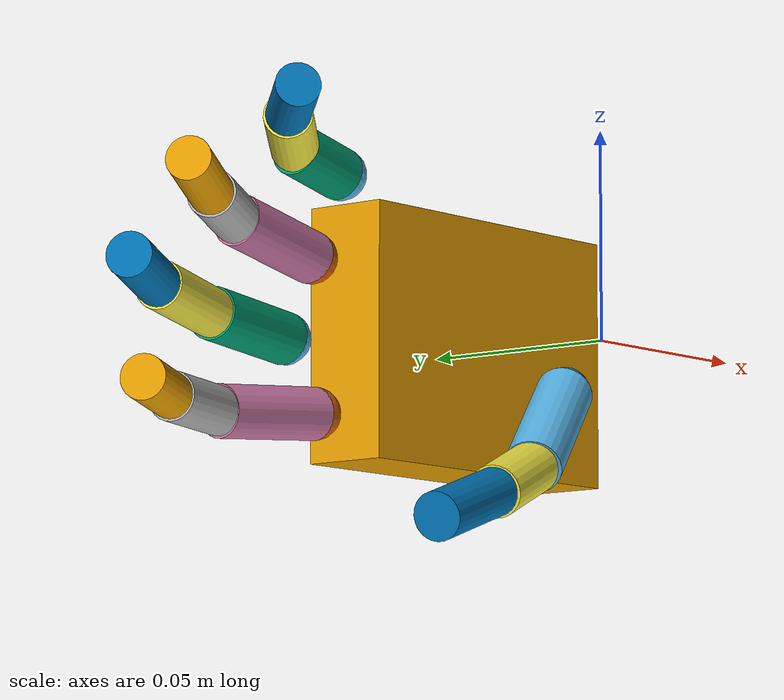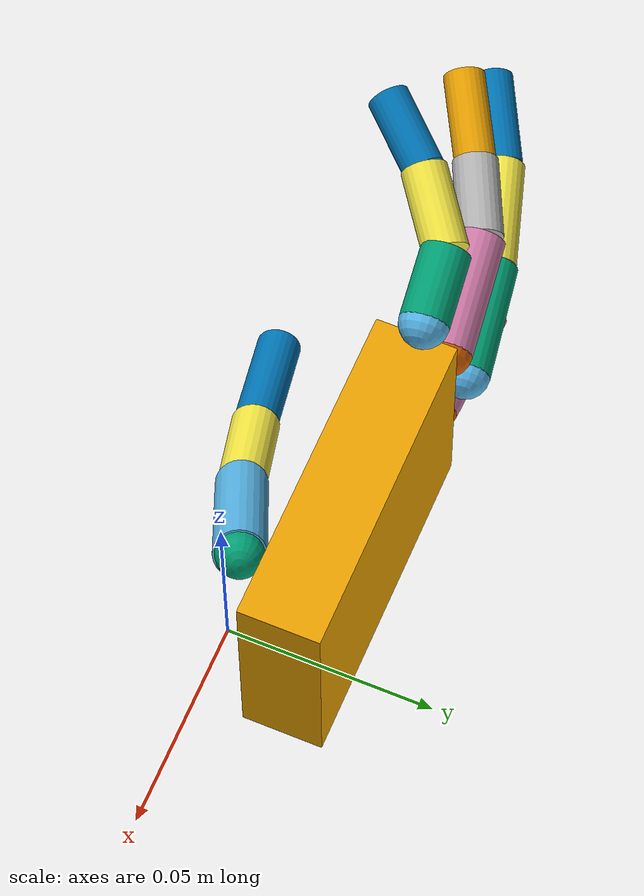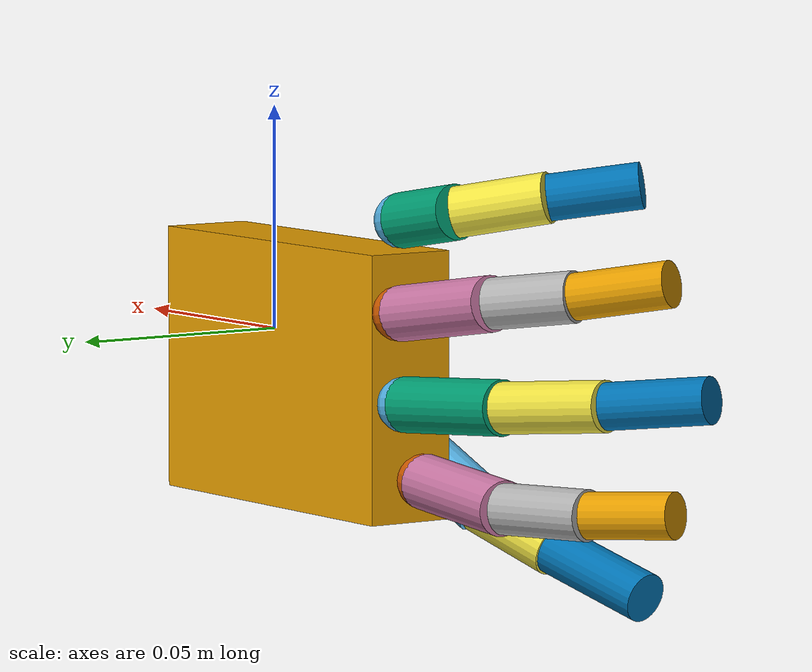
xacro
<?xml version="1.0"?>
<robot xmlns:xacro="http://www.ros.org/wiki/xacro" name="contact_glove_left_hand">
  <xacro:include filename="contact_glove_hand_macro.xacro"/>
  <xacro:contact_glove_hand prefix="left_" reflect="-1"
    thumb_cmc_xyz="-0.025381 -0.008529 -0.015627" thumb_cmc_rpy="0.334048 -0.915860 -3.141593"
    thumb_mcp_xyz="0.000000 0.000000 -0.035171" thumb_mcp_rpy="0.210768 -0.213154 -1.064962"
    thumb_ip_xyz="-0.000000 0.000000 -0.022226" thumb_ip_rpy="0.036811 -0.075436 -0.018412"
    index_tilt_xyz="-0.083161 0.016905 -0.024087" index_tilt_rpy="-0.033286 -1.494541 -3.141593"
    index_pip_xyz="0.000000 0.000000 -0.030304" index_pip_rpy="0.301107 -0.102103 -0.003412"
    index_dip_xyz="0.000000 0.000000 -0.022533" index_dip_rpy="0.180888 -0.048283 0.013251"
    middle_tilt_xyz="-0.085536 0.023667 -0.006883" middle_tilt_rpy="-2.986293 -1.505030 0.000000"
    middle_pip_xyz="0.000000 0.000000 -0.029532" middle_pip_rpy="0.146422 -0.026088 0.004085"
    middle_dip_xyz="0.000000 0.000000 -0.026913" middle_dip_rpy="0.180227 -0.029346 0.009137"
    ring_tilt_xyz="-0.079755 0.020956 0.011829" ring_tilt_rpy="-3.023948 -1.417839 -0.000000"
    ring_pip_xyz="-0.000000 0.000000 -0.029291" ring_pip_rpy="0.328943 0.013233 -0.001564"
    ring_dip_xyz="0.000000 0.000000 -0.019854" ring_dip_rpy="0.055291 -0.045314 0.021716"
    little_tilt_xyz="-0.074475 0.016905 0.031042" little_tilt_rpy="-3.035639 -1.399894 0.000000"
    little_pip_xyz="0.000000 -0.000000 -0.017978" little_pip_rpy="0.522659 -0.049843 0.005305"
    little_dip_xyz="-0.000000 -0.000000 -0.020702" little_dip_rpy="0.189436 0.009989 -0.007264"/>
</robot>

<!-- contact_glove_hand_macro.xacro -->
<!--
  Copyright (c) 2026 Melt Interface Technologies Inc.
  SPDX-License-Identifier: Apache-2.0
-->
<robot xmlns:xacro="http://www.ros.org/wiki/xacro" name="contact_glove_hand_macro">

  <xacro:property name="joint_effort" value="5.0"/>
  <xacro:property name="joint_velocity" value="5.0"/>

  <!-- Uses calibrated lower and upper joint limits (radians).
       Shared by the four fingers: index, middle, ring, and little. -->
  <xacro:property name="tilt_lower" value="-0.85"/>
  <xacro:property name="tilt_upper" value="0.85"/>
  <xacro:property name="mcp_lower" value="-1.1344640137963142"/>
  <xacro:property name="mcp_upper" value="1.66"/>
  <xacro:property name="pip_lower" value="-0.5235987755982988"/>
  <xacro:property name="pip_upper" value="2.00"/>
  <xacro:property name="dip_lower" value="-0.3490658503988659"/>
  <xacro:property name="dip_upper" value="1.75"/>

  <xacro:property name="thumb_cmc_lower" value="-1.1344640137963142"/>
  <xacro:property name="thumb_cmc_upper" value="2.62"/>
  <xacro:property name="thumb_tilt_lower" value="-0.70"/>
  <xacro:property name="thumb_tilt_upper" value="0.70"/>
  <xacro:property name="thumb_mcp_lower" value="-1.1344640137963142"/>
  <xacro:property name="thumb_mcp_upper" value="1.85"/>
  <xacro:property name="thumb_ip_lower" value="-0.6981317007977318"/>
  <xacro:property name="thumb_ip_upper" value="1.85"/>

  <xacro:property name="thumb_cmc_len" value="0.035171"/>
  <xacro:property name="thumb_mcp_len" value="0.022226"/>
  <xacro:property name="thumb_ip_len" value="0.027821"/>
  <xacro:property name="index_mcp_len" value="0.030304"/>
  <xacro:property name="index_pip_len" value="0.022533"/>
  <xacro:property name="index_dip_len" value="0.020385"/>
  <xacro:property name="middle_mcp_len" value="0.029532"/>
  <xacro:property name="middle_pip_len" value="0.026913"/>
  <xacro:property name="middle_dip_len" value="0.023940"/>
  <xacro:property name="ring_mcp_len" value="0.029291"/>
  <xacro:property name="ring_pip_len" value="0.019854"/>
  <xacro:property name="ring_dip_len" value="0.022077"/>
  <xacro:property name="little_mcp_len" value="0.017978"/>
  <xacro:property name="little_pip_len" value="0.020702"/>
  <xacro:property name="little_dip_len" value="0.019761"/>

  <!-- Cylinder radius: a visual estimate, not a measured value. -->
  <xacro:property name="thumb_cmc_radius" value="0.0065"/>
  <xacro:property name="thumb_mcp_radius" value="0.006"/>
  <xacro:property name="thumb_ip_radius" value="0.0055"/>
  <xacro:property name="mcp_radius" value="0.006"/>
  <xacro:property name="pip_radius" value="0.0055"/>
  <xacro:property name="dip_radius" value="0.005"/>

  <!-- Draw a cylinder of length ${length} from the link origin along local Z toward
       the next joint. This matches joint-origin translations of "0 0 -length". -->
  <xacro:macro name="cg_cylinder_link" params="name length radius">
    <link name="${name}">
      <visual>
        <origin xyz="0 0 ${-length/2}" rpy="0 0 0"/>
        <geometry>
          <cylinder radius="${radius}" length="${length}"/>
        </geometry>
      </visual>
    </link>
  </xacro:macro>

  <xacro:macro name="cg_pivot_link" params="name">
    <link name="${name}">
      <visual>
        <geometry>
          <sphere radius="0.006"/>
        </geometry>
      </visual>
    </link>
  </xacro:macro>

  <xacro:macro name="cg_finger" params="prefix finger reflect
      tilt_xyz tilt_rpy
      pip_xyz pip_rpy
      dip_xyz dip_rpy
      mcp_len pip_len dip_len">
    <joint name="${prefix}${finger}_tilt_joint" type="revolute">
      <parent link="${prefix}wrist"/>
      <child link="${prefix}${finger}_tilt_link"/>
      <origin xyz="${tilt_xyz}" rpy="${tilt_rpy}"/>
      <axis xyz="0 ${reflect} 0"/>
      <limit lower="${tilt_lower}" upper="${tilt_upper}"
             effort="${joint_effort}" velocity="${joint_velocity}"/>
    </joint>
    <xacro:cg_pivot_link name="${prefix}${finger}_tilt_link"/>

    <joint name="${prefix}${finger}_mcp_joint" type="revolute">
      <parent link="${prefix}${finger}_tilt_link"/>
      <child link="${prefix}${finger}_mcp_link"/>
      <origin xyz="0 0 0" rpy="0 0 0"/>
      <axis xyz="1 0 0"/>
      <limit lower="${mcp_lower}" upper="${mcp_upper}"
             effort="${joint_effort}" velocity="${joint_velocity}"/>
    </joint>
    <xacro:cg_cylinder_link name="${prefix}${finger}_mcp_link" length="${mcp_len}" radius="${mcp_radius}"/>

    <joint name="${prefix}${finger}_pip_joint" type="revolute">
      <parent link="${prefix}${finger}_mcp_link"/>
      <child link="${prefix}${finger}_pip_link"/>
      <origin xyz="${pip_xyz}" rpy="${pip_rpy}"/>
      <axis xyz="1 0 0"/>
      <limit lower="${pip_lower}" upper="${pip_upper}"
             effort="${joint_effort}" velocity="${joint_velocity}"/>
    </joint>
    <xacro:cg_cylinder_link name="${prefix}${finger}_pip_link" length="${pip_len}" radius="${pip_radius}"/>

    <joint name="${prefix}${finger}_dip_joint" type="revolute">
      <parent link="${prefix}${finger}_pip_link"/>
      <child link="${prefix}${finger}_dip_link"/>
      <origin xyz="${dip_xyz}" rpy="${dip_rpy}"/>
      <axis xyz="1 0 0"/>
      <limit lower="${dip_lower}" upper="${dip_upper}"
             effort="${joint_effort}" velocity="${joint_velocity}"/>
    </joint>
    <xacro:cg_cylinder_link name="${prefix}${finger}_dip_link" length="${dip_len}" radius="${dip_radius}"/>
  </xacro:macro>

  <xacro:macro name="cg_thumb" params="prefix reflect
      cmc_xyz cmc_rpy
      mcp_xyz mcp_rpy
      ip_xyz ip_rpy">
    <joint name="${prefix}thumb_cmc_joint" type="revolute">
      <parent link="${prefix}wrist"/>
      <child link="${prefix}thumb_cmc_link"/>
      <origin xyz="${cmc_xyz}" rpy="${cmc_rpy}"/>
      <axis xyz="0 ${reflect} 0"/>
      <limit lower="${thumb_cmc_lower}" upper="${thumb_cmc_upper}"
             effort="${joint_effort}" velocity="${joint_velocity}"/>
    </joint>
    <xacro:cg_cylinder_link name="${prefix}thumb_cmc_link" length="${thumb_cmc_len}" radius="${thumb_cmc_radius}"/>

    <joint name="${prefix}thumb_tilt_joint" type="revolute">
      <parent link="${prefix}thumb_cmc_link"/>
      <child link="${prefix}thumb_tilt_link"/>
      <origin xyz="0 0 0" rpy="0 0 0"/>
      <axis xyz="0 0 ${reflect}"/>
      <limit lower="${thumb_tilt_lower}" upper="${thumb_tilt_upper}"
             effort="${joint_effort}" velocity="${joint_velocity}"/>
    </joint>
    <xacro:cg_pivot_link name="${prefix}thumb_tilt_link"/>

    <joint name="${prefix}thumb_mcp_joint" type="revolute">
      <parent link="${prefix}thumb_tilt_link"/>
      <child link="${prefix}thumb_mcp_link"/>
      <origin xyz="${mcp_xyz}" rpy="${mcp_rpy}"/>
      <axis xyz="1 0 0"/>
      <limit lower="${thumb_mcp_lower}" upper="${thumb_mcp_upper}"
             effort="${joint_effort}" velocity="${joint_velocity}"/>
    </joint>
    <xacro:cg_cylinder_link name="${prefix}thumb_mcp_link" length="${thumb_mcp_len}" radius="${thumb_mcp_radius}"/>

    <joint name="${prefix}thumb_ip_joint" type="revolute">
      <parent link="${prefix}thumb_mcp_link"/>
      <child link="${prefix}thumb_ip_link"/>
      <origin xyz="${ip_xyz}" rpy="${ip_rpy}"/>
      <axis xyz="1 0 0"/>
      <limit lower="${thumb_ip_lower}" upper="${thumb_ip_upper}"
             effort="${joint_effort}" velocity="${joint_velocity}"/>
    </joint>
    <xacro:cg_cylinder_link name="${prefix}thumb_ip_link" length="${thumb_ip_len}" radius="${thumb_ip_radius}"/>
  </xacro:macro>

  <xacro:macro name="contact_glove_hand" params="prefix reflect
      thumb_cmc_xyz thumb_cmc_rpy
      thumb_mcp_xyz thumb_mcp_rpy
      thumb_ip_xyz thumb_ip_rpy
      index_tilt_xyz index_tilt_rpy
      index_pip_xyz index_pip_rpy
      index_dip_xyz index_dip_rpy
      middle_tilt_xyz middle_tilt_rpy
      middle_pip_xyz middle_pip_rpy
      middle_dip_xyz middle_dip_rpy
      ring_tilt_xyz ring_tilt_rpy
      ring_pip_xyz ring_pip_rpy
      ring_dip_xyz ring_dip_rpy
      little_tilt_xyz little_tilt_rpy
      little_pip_xyz little_pip_rpy
      little_dip_xyz little_dip_rpy">
    <link name="${prefix}wrist">
      <visual>
        <origin xyz="-0.035 0.015 -0.005" rpy="0 0 0"/>
        <geometry>
          <box size="0.08 0.02 0.058"/>
        </geometry>
      </visual>
    </link>

    <xacro:cg_thumb prefix="${prefix}" reflect="${reflect}"
      cmc_xyz="${thumb_cmc_xyz}" cmc_rpy="${thumb_cmc_rpy}"
      mcp_xyz="${thumb_mcp_xyz}" mcp_rpy="${thumb_mcp_rpy}"
      ip_xyz="${thumb_ip_xyz}" ip_rpy="${thumb_ip_rpy}"/>

    <xacro:cg_finger prefix="${prefix}" finger="index" reflect="${reflect}"
      tilt_xyz="${index_tilt_xyz}" tilt_rpy="${index_tilt_rpy}"
      pip_xyz="${index_pip_xyz}" pip_rpy="${index_pip_rpy}"
      dip_xyz="${index_dip_xyz}" dip_rpy="${index_dip_rpy}"
      mcp_len="${index_mcp_len}" pip_len="${index_pip_len}" dip_len="${index_dip_len}"/>

    <xacro:cg_finger prefix="${prefix}" finger="middle" reflect="${reflect}"
      tilt_xyz="${middle_tilt_xyz}" tilt_rpy="${middle_tilt_rpy}"
      pip_xyz="${middle_pip_xyz}" pip_rpy="${middle_pip_rpy}"
      dip_xyz="${middle_dip_xyz}" dip_rpy="${middle_dip_rpy}"
      mcp_len="${middle_mcp_len}" pip_len="${middle_pip_len}" dip_len="${middle_dip_len}"/>

    <xacro:cg_finger prefix="${prefix}" finger="ring" reflect="${reflect}"
      tilt_xyz="${ring_tilt_xyz}" tilt_rpy="${ring_tilt_rpy}"
      pip_xyz="${ring_pip_xyz}" pip_rpy="${ring_pip_rpy}"
      dip_xyz="${ring_dip_xyz}" dip_rpy="${ring_dip_rpy}"
      mcp_len="${ring_mcp_len}" pip_len="${ring_pip_len}" dip_len="${ring_dip_len}"/>

    <xacro:cg_finger prefix="${prefix}" finger="little" reflect="${reflect}"
      tilt_xyz="${little_tilt_xyz}" tilt_rpy="${little_tilt_rpy}"
      pip_xyz="${little_pip_xyz}" pip_rpy="${little_pip_rpy}"
      dip_xyz="${little_dip_xyz}" dip_rpy="${little_dip_rpy}"
      mcp_len="${little_mcp_len}" pip_len="${little_pip_len}" dip_len="${little_dip_len}"/>
  </xacro:macro>
</robot>
